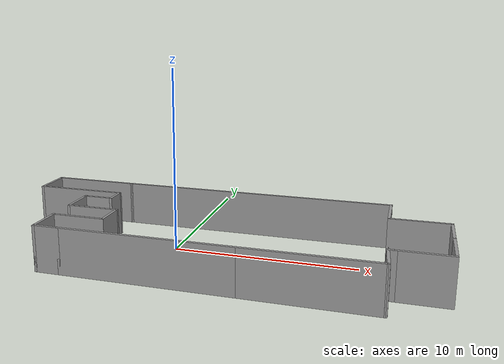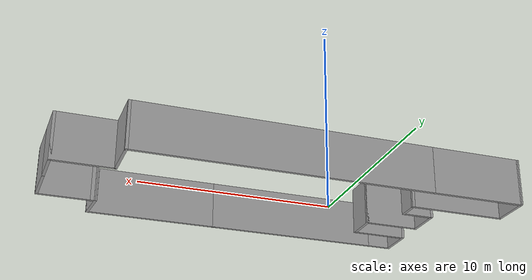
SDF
<?xml version='1.0'?>
<sdf version='1.6'>
  <model name='test'>
    <pose frame=''>2.59673 -0.642294 0 0 -0 0</pose>
    <link name='Wall_10'>
      <collision name='Wall_10_Collision'>
        <geometry>
          <box>
            <size>2.25 0.15 2.5</size>
          </box>
        </geometry>
        <pose frame=''>0 0 1.25 0 -0 0</pose>
      </collision>
      <visual name='Wall_10_Visual'>
        <pose frame=''>0 0 1.25 0 -0 0</pose>
        <geometry>
          <box>
            <size>2.25 0.15 2.5</size>
          </box>
        </geometry>
        <material>
          <script>
            <uri>file://media/materials/scripts/gazebo.material</uri>
            <name>Gazebo/Grey</name>
          </script>
          <ambient>1 1 1 1</ambient>
        </material>
      </visual>
      <pose frame=''>11.8172 0.824011 0 0 0 -1.5708</pose>
    </link>
    <link name='Wall_11'>
      <collision name='Wall_11_Collision'>
        <geometry>
          <box>
            <size>2.5 0.15 2.5</size>
          </box>
        </geometry>
        <pose frame=''>0 0 1.25 0 -0 0</pose>
      </collision>
      <visual name='Wall_11_Visual'>
        <pose frame=''>0 0 1.25 0 -0 0</pose>
        <geometry>
          <box>
            <size>2.5 0.15 2.5</size>
          </box>
        </geometry>
        <material>
          <script>
            <uri>file://media/materials/scripts/gazebo.material</uri>
            <name>Gazebo/Grey</name>
          </script>
          <ambient>1 1 1 1</ambient>
        </material>
      </visual>
      <pose frame=''>11.8172 -1.40099 0 0 0 -1.5708</pose>
    </link>
    <link name='Wall_12'>
      <collision name='Wall_12_Collision'>
        <geometry>
          <box>
            <size>2.75 0.15 2.5</size>
          </box>
        </geometry>
        <pose frame=''>0 0 1.25 0 -0 0</pose>
      </collision>
      <visual name='Wall_12_Visual'>
        <pose frame=''>0 0 1.25 0 -0 0</pose>
        <geometry>
          <box>
            <size>2.75 0.15 2.5</size>
          </box>
        </geometry>
        <material>
          <script>
            <uri>file://media/materials/scripts/gazebo.material</uri>
            <name>Gazebo/Grey</name>
          </script>
          <ambient>1 1 1 1</ambient>
        </material>
      </visual>
      <pose frame=''>10.5172 -2.57599 0 0 -0 3.14159</pose>
    </link>
    <link name='Wall_13'>
      <collision name='Wall_13_Collision'>
        <geometry>
          <box>
            <size>0.5 0.15 2.5</size>
          </box>
        </geometry>
        <pose frame=''>0 0 1.25 0 -0 0</pose>
      </collision>
      <visual name='Wall_13_Visual'>
        <pose frame=''>0 0 1.25 0 -0 0</pose>
        <geometry>
          <box>
            <size>0.5 0.15 2.5</size>
          </box>
        </geometry>
        <material>
          <script>
            <uri>file://media/materials/scripts/gazebo.material</uri>
            <name>Gazebo/Grey</name>
          </script>
          <ambient>1 1 1 1</ambient>
        </material>
      </visual>
      <pose frame=''>9.04215 -2.57599 0 0 -0 3.14159</pose>
    </link>
    <link name='Wall_14'>
      <collision name='Wall_14_Collision'>
        <geometry>
          <box>
            <size>1.82574 0.15 2.5</size>
          </box>
        </geometry>
        <pose frame=''>0 0 1.25 0 -0 0</pose>
      </collision>
      <visual name='Wall_14_Visual'>
        <pose frame=''>0 0 1.25 0 -0 0</pose>
        <geometry>
          <box>
            <size>1.82574 0.15 2.5</size>
          </box>
        </geometry>
        <material>
          <script>
            <uri>file://media/materials/scripts/gazebo.material</uri>
            <name>Gazebo/Grey</name>
          </script>
          <ambient>1 1 1 1</ambient>
        </material>
      </visual>
      <pose frame=''>8.92521 -3.41185 0 0 0 -1.50145</pose>
    </link>
    <link name='Wall_16'>
      <collision name='Wall_16_Collision'>
        <geometry>
          <box>
            <size>1.5 0.15 2.5</size>
          </box>
        </geometry>
        <pose frame=''>0 0 1.25 0 -0 0</pose>
      </collision>
      <visual name='Wall_16_Visual'>
        <pose frame=''>0 0 1.25 0 -0 0</pose>
        <geometry>
          <box>
            <size>1.5 0.15 2.5</size>
          </box>
        </geometry>
        <material>
          <script>
            <uri>file://media/materials/scripts/gazebo.material</uri>
            <name>Gazebo/Grey</name>
          </script>
          <ambient>1 1 1 1</ambient>
        </material>
      </visual>
      <pose frame=''>-7.64173 -4.24771 0 0 -0 3.14159</pose>
    </link>
    <link name='Wall_17'>
      <collision name='Wall_17_Collision'>
        <geometry>
          <box>
            <size>2 0.15 2.5</size>
          </box>
        </geometry>
        <pose frame=''>0 0 1.25 0 -0 0</pose>
      </collision>
      <visual name='Wall_17_Visual'>
        <pose frame=''>0 0 1.25 0 -0 0</pose>
        <geometry>
          <box>
            <size>2 0.15 2.5</size>
          </box>
        </geometry>
        <material>
          <script>
            <uri>file://media/materials/scripts/gazebo.material</uri>
            <name>Gazebo/Grey</name>
          </script>
          <ambient>1 1 1 1</ambient>
        </material>
      </visual>
      <pose frame=''>-8.31673 -3.32271 0 0 -0 1.5708</pose>
    </link>
    <link name='Wall_18'>
      <collision name='Wall_18_Collision'>
        <geometry>
          <box>
            <size>3 0.15 2.5</size>
          </box>
        </geometry>
        <pose frame=''>0 0 1.25 0 -0 0</pose>
      </collision>
      <visual name='Wall_18_Visual'>
        <pose frame=''>0 0 1.25 0 -0 0</pose>
        <geometry>
          <box>
            <size>3 0.15 2.5</size>
          </box>
        </geometry>
        <material>
          <script>
            <uri>file://media/materials/scripts/gazebo.material</uri>
            <name>Gazebo/Grey</name>
          </script>
          <ambient>1 1 1 1</ambient>
        </material>
      </visual>
      <pose frame=''>-6.89173 -2.39771 0 0 -0 0</pose>
    </link>
    <link name='Wall_19'>
      <collision name='Wall_19_Collision'>
        <geometry>
          <box>
            <size>1.75 0.15 2.5</size>
          </box>
        </geometry>
        <pose frame=''>0 0 1.25 0 -0 0</pose>
      </collision>
      <visual name='Wall_19_Visual'>
        <pose frame=''>0 0 1.25 0 -0 0</pose>
        <geometry>
          <box>
            <size>1.75 0.15 2.5</size>
          </box>
        </geometry>
        <material>
          <script>
            <uri>file://media/materials/scripts/gazebo.material</uri>
            <name>Gazebo/Grey</name>
          </script>
          <ambient>1 1 1 1</ambient>
        </material>
      </visual>
      <pose frame=''>-5.46673 -1.59771 0 0 -0 1.5708</pose>
    </link>
    <link name='Wall_2'>
      <collision name='Wall_2_Collision'>
        <geometry>
          <box>
            <size>9.25 0.15 2.5</size>
          </box>
        </geometry>
        <pose frame=''>0 0 1.25 0 -0 0</pose>
      </collision>
      <visual name='Wall_2_Visual'>
        <pose frame=''>0 0 1.25 0 -0 0</pose>
        <geometry>
          <box>
            <size>9.25 0.15 2.5</size>
          </box>
        </geometry>
        <material>
          <script>
            <uri>file://media/materials/scripts/gazebo.material</uri>
            <name>Gazebo/Grey</name>
          </script>
          <ambient>1 1 1 1</ambient>
        </material>
      </visual>
      <pose frame=''>-2.41673 -4.24771 0 0 -0 0</pose>
    </link>
    <link name='Wall_20'>
      <collision name='Wall_20_Collision'>
        <geometry>
          <box>
            <size>3 0.15 2.5</size>
          </box>
        </geometry>
        <pose frame=''>0 0 1.25 0 -0 0</pose>
      </collision>
      <visual name='Wall_20_Visual'>
        <pose frame=''>0 0 1.25 0 -0 0</pose>
        <geometry>
          <box>
            <size>3 0.15 2.5</size>
          </box>
        </geometry>
        <material>
          <script>
            <uri>file://media/materials/scripts/gazebo.material</uri>
            <name>Gazebo/Grey</name>
          </script>
          <ambient>1 1 1 1</ambient>
        </material>
      </visual>
      <pose frame=''>-6.89173 -0.797706 0 0 -0 3.14159</pose>
    </link>
    <link name='Wall_21'>
      <collision name='Wall_21_Collision'>
        <geometry>
          <box>
            <size>2 0.15 2.5</size>
          </box>
        </geometry>
        <pose frame=''>0 0 1.25 0 -0 0</pose>
      </collision>
      <visual name='Wall_21_Visual'>
        <pose frame=''>0 0 1.25 0 -0 0</pose>
        <geometry>
          <box>
            <size>2 0.15 2.5</size>
          </box>
        </geometry>
        <material>
          <script>
            <uri>file://media/materials/scripts/gazebo.material</uri>
            <name>Gazebo/Grey</name>
          </script>
          <ambient>1 1 1 1</ambient>
        </material>
      </visual>
      <pose frame=''>-8.31673 0.127294 0 0 -0 1.5708</pose>
    </link>
    <link name='Wall_25'>
      <collision name='Wall_25_Collision'>
        <geometry>
          <box>
            <size>1.75 0.15 2.5</size>
          </box>
        </geometry>
        <pose frame=''>0 0 1.25 0 -0 0</pose>
      </collision>
      <visual name='Wall_25_Visual'>
        <pose frame=''>0 0 1.25 0 -0 0</pose>
        <geometry>
          <box>
            <size>1.75 0.15 2.5</size>
          </box>
        </geometry>
        <material>
          <script>
            <uri>file://media/materials/scripts/gazebo.material</uri>
            <name>Gazebo/Grey</name>
          </script>
          <ambient>1 1 1 1</ambient>
        </material>
      </visual>
      <pose frame=''>-7.51673 1.05229 0 0 -0 0</pose>
    </link>
    <link name='Wall_26'>
      <collision name='Wall_26_Collision'>
        <geometry>
          <box>
            <size>1.25 0.15 2.5</size>
          </box>
        </geometry>
        <pose frame=''>0 0 1.25 0 -0 0</pose>
      </collision>
      <visual name='Wall_26_Visual'>
        <pose frame=''>0 0 1.25 0 -0 0</pose>
        <geometry>
          <box>
            <size>1.25 0.15 2.5</size>
          </box>
        </geometry>
        <material>
          <script>
            <uri>file://media/materials/scripts/gazebo.material</uri>
            <name>Gazebo/Grey</name>
          </script>
          <ambient>1 1 1 1</ambient>
        </material>
      </visual>
      <pose frame=''>-6.71673 1.60229 0 0 -0 1.5708</pose>
    </link>
    <link name='Wall_27'>
      <collision name='Wall_27_Collision'>
        <geometry>
          <box>
            <size>5.25 0.15 2.5</size>
          </box>
        </geometry>
        <pose frame=''>0 0 1.25 0 -0 0</pose>
      </collision>
      <visual name='Wall_27_Visual'>
        <pose frame=''>0 0 1.25 0 -0 0</pose>
        <geometry>
          <box>
            <size>5.25 0.15 2.5</size>
          </box>
        </geometry>
        <material>
          <script>
            <uri>file://media/materials/scripts/gazebo.material</uri>
            <name>Gazebo/Grey</name>
          </script>
          <ambient>1 1 1 1</ambient>
        </material>
      </visual>
      <pose frame=''>-9.26673 2.15229 0 0 -0 3.14159</pose>
    </link>
    <link name='Wall_28'>
      <collision name='Wall_28_Collision'>
        <geometry>
          <box>
            <size>2.25 0.15 2.5</size>
          </box>
        </geometry>
        <pose frame=''>0 0 1.25 0 -0 0</pose>
      </collision>
      <visual name='Wall_28_Visual'>
        <pose frame=''>0 0 1.25 0 -0 0</pose>
        <geometry>
          <box>
            <size>2.25 0.15 2.5</size>
          </box>
        </geometry>
        <material>
          <script>
            <uri>file://media/materials/scripts/gazebo.material</uri>
            <name>Gazebo/Grey</name>
          </script>
          <ambient>1 1 1 1</ambient>
        </material>
      </visual>
      <pose frame=''>-11.8167 3.20229 0 0 -0 1.5708</pose>
    </link>
    <link name='Wall_29'>
      <collision name='Wall_29_Collision'>
        <geometry>
          <box>
            <size>5.08396 0.15 2.5</size>
          </box>
        </geometry>
        <pose frame=''>0 0 1.25 0 -0 0</pose>
      </collision>
      <visual name='Wall_29_Visual'>
        <pose frame=''>0 0 1.25 0 -0 0</pose>
        <geometry>
          <box>
            <size>5.08396 0.15 2.5</size>
          </box>
        </geometry>
        <material>
          <script>
            <uri>file://media/materials/scripts/gazebo.material</uri>
            <name>Gazebo/Grey</name>
          </script>
          <ambient>1 1 1 1</ambient>
        </material>
      </visual>
      <pose frame=''>-9.34979 4.23815 0 0 0 -0.005732</pose>
    </link>
    <link name='Wall_4'>
      <collision name='Wall_4_Collision'>
        <geometry>
          <box>
            <size>7 0.15 2.5</size>
          </box>
        </geometry>
        <pose frame=''>0 0 1.25 0 -0 0</pose>
      </collision>
      <visual name='Wall_4_Visual'>
        <pose frame=''>0 0 1.25 0 -0 0</pose>
        <geometry>
          <box>
            <size>7 0.15 2.5</size>
          </box>
        </geometry>
        <material>
          <script>
            <uri>file://media/materials/scripts/gazebo.material</uri>
            <name>Gazebo/Grey</name>
          </script>
          <ambient>1 1 1 1</ambient>
        </material>
      </visual>
      <pose frame=''>5.55827 -4.24771 0 0 -0 0</pose>
    </link>
    <link name='Wall_7'>
      <collision name='Wall_7_Collision'>
        <geometry>
          <box>
            <size>15.75 0.15 2.5</size>
          </box>
        </geometry>
        <pose frame=''>0 0 1.25 0 -0 0</pose>
      </collision>
      <visual name='Wall_7_Visual'>
        <pose frame=''>0 0 1.25 0 -0 0</pose>
        <geometry>
          <box>
            <size>15.75 0.15 2.5</size>
          </box>
        </geometry>
        <material>
          <script>
            <uri>file://media/materials/scripts/gazebo.material</uri>
            <name>Gazebo/Grey</name>
          </script>
          <ambient>1 1 1 1</ambient>
        </material>
      </visual>
      <pose frame=''>0.917156 4.22401 0 0 -0 0</pose>
    </link>
    <link name='Wall_8'>
      <collision name='Wall_8_Collision'>
        <geometry>
          <box>
            <size>2.5 0.15 2.5</size>
          </box>
        </geometry>
        <pose frame=''>0 0 1.25 0 -0 0</pose>
      </collision>
      <visual name='Wall_8_Visual'>
        <pose frame=''>0 0 1.25 0 -0 0</pose>
        <geometry>
          <box>
            <size>2.5 0.15 2.5</size>
          </box>
        </geometry>
        <material>
          <script>
            <uri>file://media/materials/scripts/gazebo.material</uri>
            <name>Gazebo/Grey</name>
          </script>
          <ambient>1 1 1 1</ambient>
        </material>
      </visual>
      <pose frame=''>8.71715 3.04901 0 0 0 -1.5708</pose>
    </link>
    <link name='Wall_9'>
      <collision name='Wall_9_Collision'>
        <geometry>
          <box>
            <size>3.25 0.15 2.5</size>
          </box>
        </geometry>
        <pose frame=''>0 0 1.25 0 -0 0</pose>
      </collision>
      <visual name='Wall_9_Visual'>
        <pose frame=''>0 0 1.25 0 -0 0</pose>
        <geometry>
          <box>
            <size>3.25 0.15 2.5</size>
          </box>
        </geometry>
        <material>
          <script>
            <uri>file://media/materials/scripts/gazebo.material</uri>
            <name>Gazebo/Grey</name>
          </script>
          <ambient>1 1 1 1</ambient>
        </material>
      </visual>
      <pose frame=''>10.2672 1.87401 0 0 -0 0</pose>
    </link>
    <static>1</static>
  </model>
</sdf>
